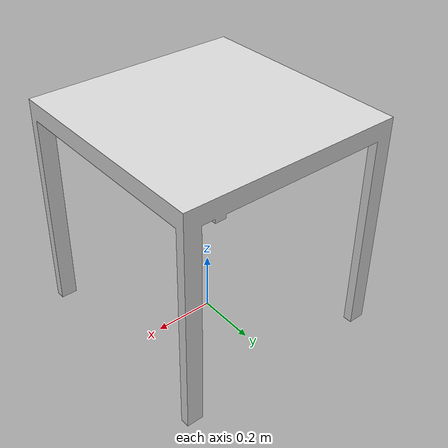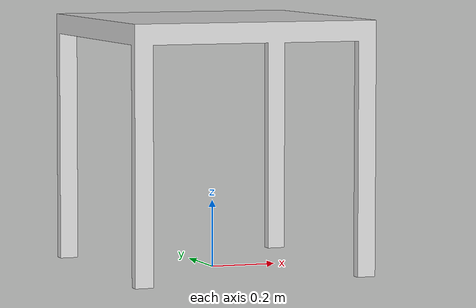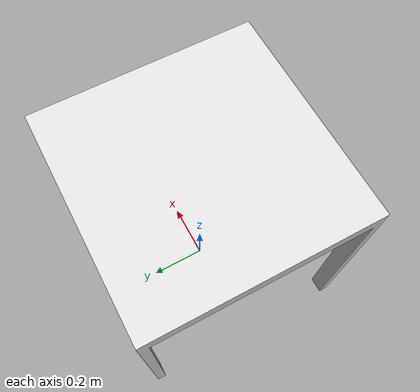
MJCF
<mujoco model="scene_table_edit">
  <compiler angle="degree" meshdir="meshes" texturedir="textures"/>
  <option gravity="0 0 -9.81"/>
  <default>
    <joint armature="0.01" damping="0.5"/>
    <default class="visual">
      <geom contype="0" conaffinity="0" group="2"/>
    </default>
    <default class="collision">
      <geom rgba="0.9 0.9 0.0 0.2" group="3"/>
    </default>
  </default>
  <asset>
    <material name="M_mat0_013" rgba="0.8471 0.8471 0.8471 1.0000"/>
    <mesh name="ImagetostlMesh0012" file="ImagetostlMesh0012.obj"/>
  </asset>
  <worldbody>
    <body name="imagetostl_mesh_0_012" pos="0.000000 0.000000 0.000000" quat="0.707107 0.707107 0.000000 0.000000">
      <geom type="mesh" mesh="ImagetostlMesh0012" class="visual" material="M_mat0_013"/>
      <geom type="mesh" mesh="ImagetostlMesh0012" class="collision"/>
    </body>
  </worldbody>
</mujoco>
